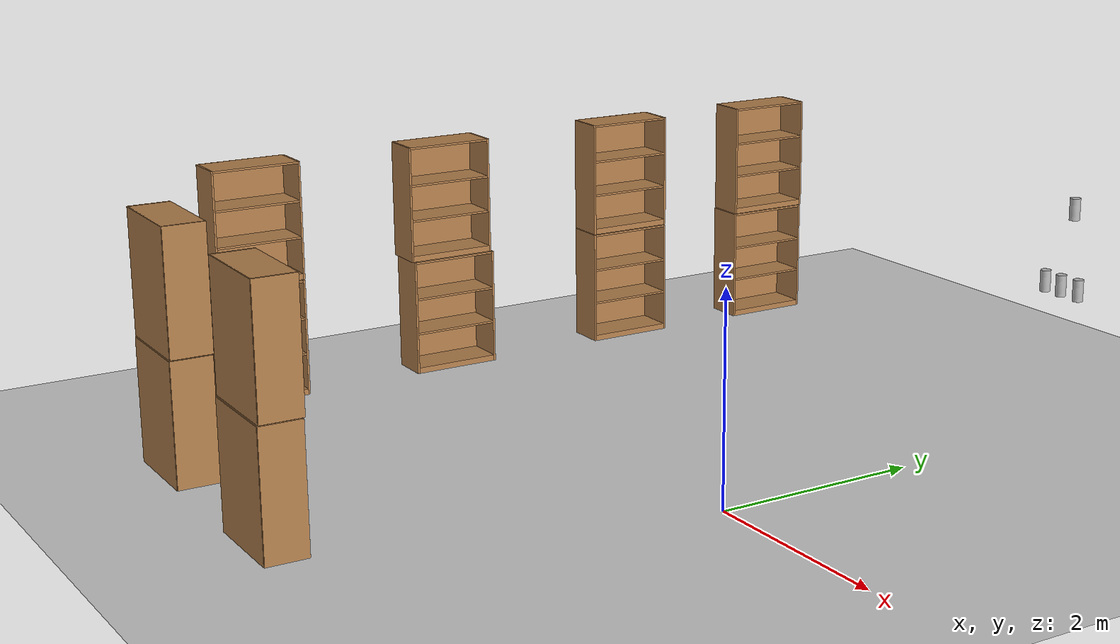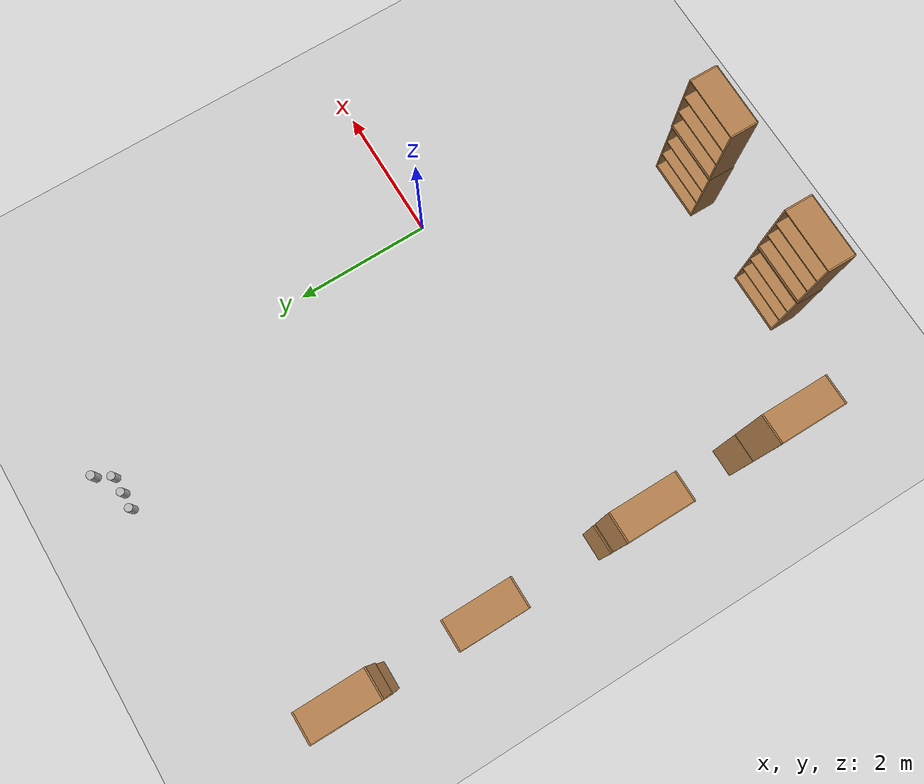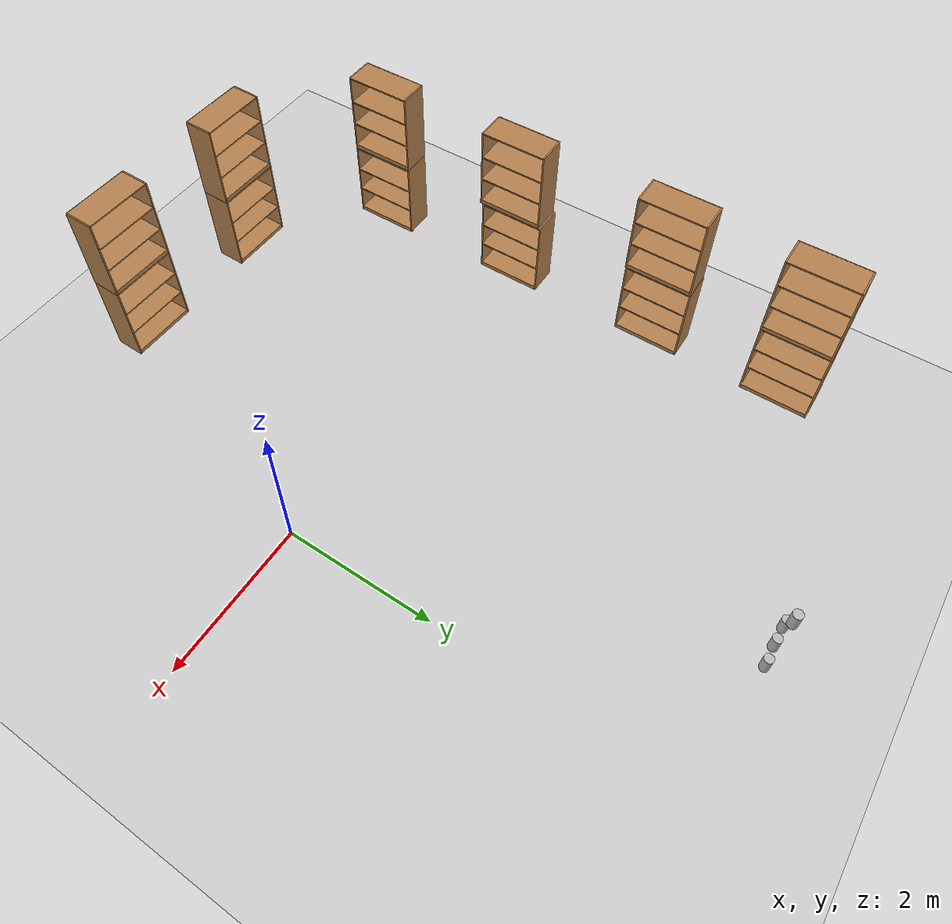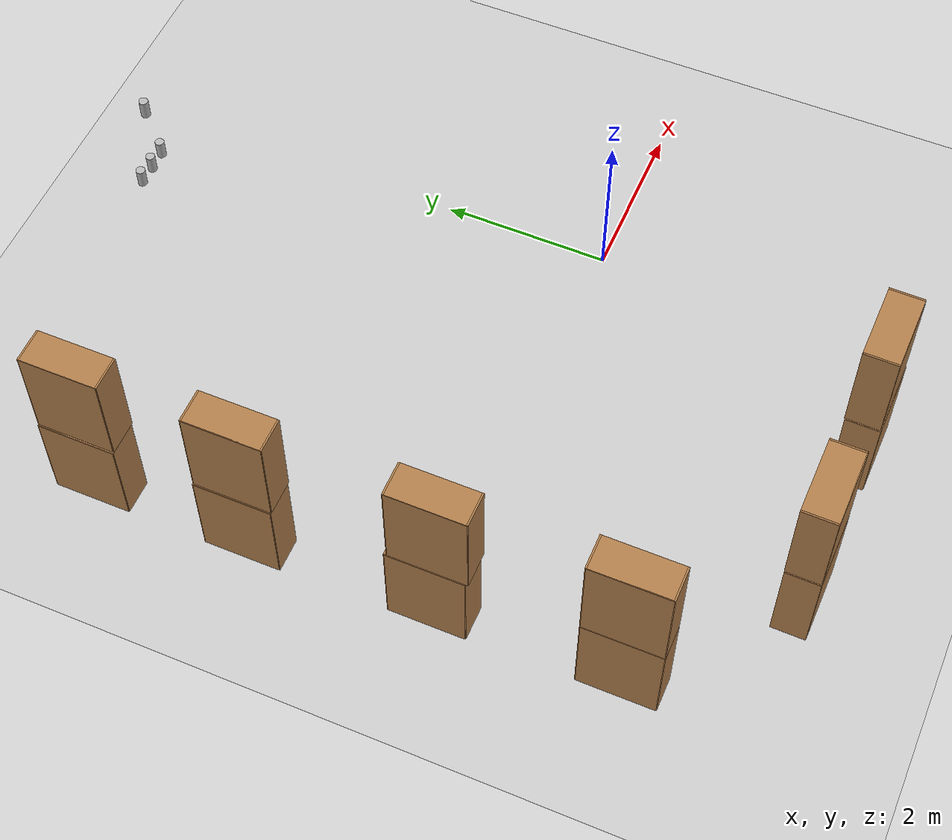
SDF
<sdf version="1.7">
 <world name="default">
  <model name="ground_plane">
   <static>1</static>
   <link name="link">
    <collision name="collision">
     <geometry><plane><normal>0 0 1</normal><size>100 100</size></plane></geometry>
     <surface><friction><ode><mu>100</mu><mu2>50</mu2></ode></friction></surface>
    </collision>
    <visual name="visual">
     <cast_shadows>0</cast_shadows>
     <geometry><plane><normal>0 0 1</normal><size>100 100</size></plane></geometry>
     <material>
      <script><uri>file://media/materials/scripts/gazebo.material</uri><name>Gazebo/Grey</name></script>
     </material>
    </visual>
   </link>
  </model>
  <model name="bookshelf_5_clone_2">
   <static>1</static>
   <link name="link">
    <inertial><mass>1</mass></inertial>
    <collision name="back">
     <pose>0 0.005 0.6 0 -0 0</pose>
     <geometry><box><size>0.9 0.01 1.2</size></box></geometry>
    </collision>
    <visual name="visual1">
     <pose>0 0.005 0.6 0 -0 0</pose>
     <geometry><box><size>0.9 0.01 1.2</size></box></geometry>
     <material>
      <script><uri>file://media/materials/scripts/gazebo.material</uri><name>Gazebo/Wood</name></script>
     </material>
    </visual>
    <collision name="left_side">
     <pose>0.45 -0.195 0.6 0 -0 0</pose>
     <geometry><box><size>0.02 0.4 1.2</size></box></geometry>
    </collision>
    <visual name="visual2">
     <pose>0.45 -0.195 0.6 0 -0 0</pose>
     <geometry><box><size>0.02 0.4 1.2</size></box></geometry>
     <material>
      <script><uri>file://media/materials/scripts/gazebo.material</uri><name>Gazebo/Wood</name></script>
     </material>
    </visual>
    <collision name="right_side">
     <pose>-0.45 -0.195 0.6 0 -0 0</pose>
     <geometry><box><size>0.02 0.4 1.2</size></box></geometry>
    </collision>
    <visual name="visual3">
     <pose>-0.45 -0.195 0.6 0 -0 0</pose>
     <geometry><box><size>0.02 0.4 1.2</size></box></geometry>
     <material>
      <script><uri>file://media/materials/scripts/gazebo.material</uri><name>Gazebo/Wood</name></script>
     </material>
    </visual>
    <collision name="bottom">
     <pose>0 -0.195 0.03 0 -0 0</pose>
     <geometry><box><size>0.88 0.4 0.06</size></box></geometry>
    </collision>
    <visual name="visual4">
     <pose>0 -0.195 0.03 0 -0 0</pose>
     <geometry><box><size>0.88 0.4 0.06</size></box></geometry>
     <material>
      <script><uri>file://media/materials/scripts/gazebo.material</uri><name>Gazebo/Wood</name></script>
     </material>
    </visual>
    <collision name="top">
     <pose>0 -0.195 1.19 0 -0 0</pose>
     <geometry><box><size>0.88 0.4 0.02</size></box></geometry>
    </collision>
    <visual name="visual5">
     <pose>0 -0.195 1.19 0 -0 0</pose>
     <geometry><box><size>0.88 0.4 0.02</size></box></geometry>
     <material>
      <script><uri>file://media/materials/scripts/gazebo.material</uri><name>Gazebo/Wood</name></script>
     </material>
    </visual>
    <collision name="low_shelf">
     <pose>0 -0.195 0.43 0 -0 0</pose>
     <geometry><box><size>0.88 0.4 0.02</size></box></geometry>
    </collision>
    <visual name="visual6">
     <pose>0 -0.195 0.43 0 -0 0</pose>
     <geometry><box><size>0.88 0.4 0.02</size></box></geometry>
     <material>
      <script><uri>file://media/materials/scripts/gazebo.material</uri><name>Gazebo/Wood</name></script>
     </material>
    </visual>
    <collision name="high_shelf">
     <pose>0 -0.195 0.8 0 -0 0</pose>
     <geometry><box><size>0.88 0.4 0.02</size></box></geometry>
    </collision>
    <visual name="visual7">
     <pose>0 -0.195 0.8 0 -0 0</pose>
     <geometry><box><size>0.88 0.4 0.02</size></box></geometry>
     <material>
      <script><uri>file://media/materials/scripts/gazebo.material</uri><name>Gazebo/Wood</name></script>
     </material>
    </visual>
   </link>
   <pose>-1.42311 -3.81825 0 0 -0 3.12955</pose>
  </model>
  <model name="bookshelf_5_clone_5">
   <static>1</static>
   <link name="link">
    <inertial><mass>1</mass></inertial>
    <collision name="back">
     <pose>0 0.005 0.6 0 -0 0</pose>
     <geometry><box><size>0.9 0.01 1.2</size></box></geometry>
    </collision>
    <visual name="visual1">
     <pose>0 0.005 0.6 0 -0 0</pose>
     <geometry><box><size>0.9 0.01 1.2</size></box></geometry>
     <material>
      <script><uri>file://media/materials/scripts/gazebo.material</uri><name>Gazebo/Wood</name></script>
     </material>
    </visual>
    <collision name="left_side">
     <pose>0.45 -0.195 0.6 0 -0 0</pose>
     <geometry><box><size>0.02 0.4 1.2</size></box></geometry>
    </collision>
    <visual name="visual2">
     <pose>0.45 -0.195 0.6 0 -0 0</pose>
     <geometry><box><size>0.02 0.4 1.2</size></box></geometry>
     <material>
      <script><uri>file://media/materials/scripts/gazebo.material</uri><name>Gazebo/Wood</name></script>
     </material>
    </visual>
    <collision name="right_side">
     <pose>-0.45 -0.195 0.6 0 -0 0</pose>
     <geometry><box><size>0.02 0.4 1.2</size></box></geometry>
    </collision>
    <visual name="visual3">
     <pose>-0.45 -0.195 0.6 0 -0 0</pose>
     <geometry><box><size>0.02 0.4 1.2</size></box></geometry>
     <material>
      <script><uri>file://media/materials/scripts/gazebo.material</uri><name>Gazebo/Wood</name></script>
     </material>
    </visual>
    <collision name="bottom">
     <pose>0 -0.195 0.03 0 -0 0</pose>
     <geometry><box><size>0.88 0.4 0.06</size></box></geometry>
    </collision>
    <visual name="visual4">
     <pose>0 -0.195 0.03 0 -0 0</pose>
     <geometry><box><size>0.88 0.4 0.06</size></box></geometry>
     <material>
      <script><uri>file://media/materials/scripts/gazebo.material</uri><name>Gazebo/Wood</name></script>
     </material>
    </visual>
    <collision name="top">
     <pose>0 -0.195 1.19 0 -0 0</pose>
     <geometry><box><size>0.88 0.4 0.02</size></box></geometry>
    </collision>
    <visual name="visual5">
     <pose>0 -0.195 1.19 0 -0 0</pose>
     <geometry><box><size>0.88 0.4 0.02</size></box></geometry>
     <material>
      <script><uri>file://media/materials/scripts/gazebo.material</uri><name>Gazebo/Wood</name></script>
     </material>
    </visual>
    <collision name="low_shelf">
     <pose>0 -0.195 0.43 0 -0 0</pose>
     <geometry><box><size>0.88 0.4 0.02</size></box></geometry>
    </collision>
    <visual name="visual6">
     <pose>0 -0.195 0.43 0 -0 0</pose>
     <geometry><box><size>0.88 0.4 0.02</size></box></geometry>
     <material>
      <script><uri>file://media/materials/scripts/gazebo.material</uri><name>Gazebo/Wood</name></script>
     </material>
    </visual>
    <collision name="high_shelf">
     <pose>0 -0.195 0.8 0 -0 0</pose>
     <geometry><box><size>0.88 0.4 0.02</size></box></geometry>
    </collision>
    <visual name="visual7">
     <pose>0 -0.195 0.8 0 -0 0</pose>
     <geometry><box><size>0.88 0.4 0.02</size></box></geometry>
     <material>
      <script><uri>file://media/materials/scripts/gazebo.material</uri><name>Gazebo/Wood</name></script>
     </material>
    </visual>
   </link>
   <pose>-3.44979 -3.80253 0 0 -0 3.12955</pose>
  </model>
  <model name="bookshelf_5_clone_clone_0">
   <static>1</static>
   <link name="link">
    <inertial><mass>1</mass></inertial>
    <collision name="back">
     <pose>0 0.005 0.6 0 -0 0</pose>
     <geometry><box><size>0.9 0.01 1.2</size></box></geometry>
    </collision>
    <visual name="visual1">
     <pose>0 0.005 0.6 0 -0 0</pose>
     <geometry><box><size>0.9 0.01 1.2</size></box></geometry>
     <material>
      <script><uri>file://media/materials/scripts/gazebo.material</uri><name>Gazebo/Wood</name></script>
     </material>
    </visual>
    <collision name="left_side">
     <pose>0.45 -0.195 0.6 0 -0 0</pose>
     <geometry><box><size>0.02 0.4 1.2</size></box></geometry>
    </collision>
    <visual name="visual2">
     <pose>0.45 -0.195 0.6 0 -0 0</pose>
     <geometry><box><size>0.02 0.4 1.2</size></box></geometry>
     <material>
      <script><uri>file://media/materials/scripts/gazebo.material</uri><name>Gazebo/Wood</name></script>
     </material>
    </visual>
    <collision name="right_side">
     <pose>-0.45 -0.195 0.6 0 -0 0</pose>
     <geometry><box><size>0.02 0.4 1.2</size></box></geometry>
    </collision>
    <visual name="visual3">
     <pose>-0.45 -0.195 0.6 0 -0 0</pose>
     <geometry><box><size>0.02 0.4 1.2</size></box></geometry>
     <material>
      <script><uri>file://media/materials/scripts/gazebo.material</uri><name>Gazebo/Wood</name></script>
     </material>
    </visual>
    <collision name="bottom">
     <pose>0 -0.195 0.03 0 -0 0</pose>
     <geometry><box><size>0.88 0.4 0.06</size></box></geometry>
    </collision>
    <visual name="visual4">
     <pose>0 -0.195 0.03 0 -0 0</pose>
     <geometry><box><size>0.88 0.4 0.06</size></box></geometry>
     <material>
      <script><uri>file://media/materials/scripts/gazebo.material</uri><name>Gazebo/Wood</name></script>
     </material>
    </visual>
    <collision name="top">
     <pose>0 -0.195 1.19 0 -0 0</pose>
     <geometry><box><size>0.88 0.4 0.02</size></box></geometry>
    </collision>
    <visual name="visual5">
     <pose>0 -0.195 1.19 0 -0 0</pose>
     <geometry><box><size>0.88 0.4 0.02</size></box></geometry>
     <material>
      <script><uri>file://media/materials/scripts/gazebo.material</uri><name>Gazebo/Wood</name></script>
     </material>
    </visual>
    <collision name="low_shelf">
     <pose>0 -0.195 0.43 0 -0 0</pose>
     <geometry><box><size>0.88 0.4 0.02</size></box></geometry>
    </collision>
    <visual name="visual6">
     <pose>0 -0.195 0.43 0 -0 0</pose>
     <geometry><box><size>0.88 0.4 0.02</size></box></geometry>
     <material>
      <script><uri>file://media/materials/scripts/gazebo.material</uri><name>Gazebo/Wood</name></script>
     </material>
    </visual>
    <collision name="high_shelf">
     <pose>0 -0.195 0.8 0 -0 0</pose>
     <geometry><box><size>0.88 0.4 0.02</size></box></geometry>
    </collision>
    <visual name="visual7">
     <pose>0 -0.195 0.8 0 -0 0</pose>
     <geometry><box><size>0.88 0.4 0.02</size></box></geometry>
     <material>
      <script><uri>file://media/materials/scripts/gazebo.material</uri><name>Gazebo/Wood</name></script>
     </material>
    </visual>
   </link>
   <pose>-1.41694 -3.81004 1.21139 0 -0 3.12955</pose>
  </model>
  <model name="bookshelf_5_clone_clone_1">
   <static>1</static>
   <link name="link">
    <inertial><mass>1</mass></inertial>
    <collision name="back">
     <pose>0 0.005 0.6 0 -0 0</pose>
     <geometry><box><size>0.9 0.01 1.2</size></box></geometry>
    </collision>
    <visual name="visual1">
     <pose>0 0.005 0.6 0 -0 0</pose>
     <geometry><box><size>0.9 0.01 1.2</size></box></geometry>
     <material>
      <script><uri>file://media/materials/scripts/gazebo.material</uri><name>Gazebo/Wood</name></script>
     </material>
    </visual>
    <collision name="left_side">
     <pose>0.45 -0.195 0.6 0 -0 0</pose>
     <geometry><box><size>0.02 0.4 1.2</size></box></geometry>
    </collision>
    <visual name="visual2">
     <pose>0.45 -0.195 0.6 0 -0 0</pose>
     <geometry><box><size>0.02 0.4 1.2</size></box></geometry>
     <material>
      <script><uri>file://media/materials/scripts/gazebo.material</uri><name>Gazebo/Wood</name></script>
     </material>
    </visual>
    <collision name="right_side">
     <pose>-0.45 -0.195 0.6 0 -0 0</pose>
     <geometry><box><size>0.02 0.4 1.2</size></box></geometry>
    </collision>
    <visual name="visual3">
     <pose>-0.45 -0.195 0.6 0 -0 0</pose>
     <geometry><box><size>0.02 0.4 1.2</size></box></geometry>
     <material>
      <script><uri>file://media/materials/scripts/gazebo.material</uri><name>Gazebo/Wood</name></script>
     </material>
    </visual>
    <collision name="bottom">
     <pose>0 -0.195 0.03 0 -0 0</pose>
     <geometry><box><size>0.88 0.4 0.06</size></box></geometry>
    </collision>
    <visual name="visual4">
     <pose>0 -0.195 0.03 0 -0 0</pose>
     <geometry><box><size>0.88 0.4 0.06</size></box></geometry>
     <material>
      <script><uri>file://media/materials/scripts/gazebo.material</uri><name>Gazebo/Wood</name></script>
     </material>
    </visual>
    <collision name="top">
     <pose>0 -0.195 1.19 0 -0 0</pose>
     <geometry><box><size>0.88 0.4 0.02</size></box></geometry>
    </collision>
    <visual name="visual5">
     <pose>0 -0.195 1.19 0 -0 0</pose>
     <geometry><box><size>0.88 0.4 0.02</size></box></geometry>
     <material>
      <script><uri>file://media/materials/scripts/gazebo.material</uri><name>Gazebo/Wood</name></script>
     </material>
    </visual>
    <collision name="low_shelf">
     <pose>0 -0.195 0.43 0 -0 0</pose>
     <geometry><box><size>0.88 0.4 0.02</size></box></geometry>
    </collision>
    <visual name="visual6">
     <pose>0 -0.195 0.43 0 -0 0</pose>
     <geometry><box><size>0.88 0.4 0.02</size></box></geometry>
     <material>
      <script><uri>file://media/materials/scripts/gazebo.material</uri><name>Gazebo/Wood</name></script>
     </material>
    </visual>
    <collision name="high_shelf">
     <pose>0 -0.195 0.8 0 -0 0</pose>
     <geometry><box><size>0.88 0.4 0.02</size></box></geometry>
    </collision>
    <visual name="visual7">
     <pose>0 -0.195 0.8 0 -0 0</pose>
     <geometry><box><size>0.88 0.4 0.02</size></box></geometry>
     <material>
      <script><uri>file://media/materials/scripts/gazebo.material</uri><name>Gazebo/Wood</name></script>
     </material>
    </visual>
   </link>
   <pose>-3.44383 -3.79926 1.21139 0 -0 3.12955</pose>
  </model>
  <model name="bookshelf_0_clone_0">
   <static>1</static>
   <link name="link">
    <inertial><mass>1</mass></inertial>
    <collision name="back">
     <pose>0 0.005 0.6 0 -0 0</pose>
     <geometry><box><size>0.9 0.01 1.2</size></box></geometry>
    </collision>
    <visual name="visual1">
     <pose>0 0.005 0.6 0 -0 0</pose>
     <geometry><box><size>0.9 0.01 1.2</size></box></geometry>
     <material>
      <script><uri>file://media/materials/scripts/gazebo.material</uri><name>Gazebo/Wood</name></script>
     </material>
    </visual>
    <collision name="left_side">
     <pose>0.45 -0.195 0.6 0 -0 0</pose>
     <geometry><box><size>0.02 0.4 1.2</size></box></geometry>
    </collision>
    <visual name="visual2">
     <pose>0.45 -0.195 0.6 0 -0 0</pose>
     <geometry><box><size>0.02 0.4 1.2</size></box></geometry>
     <material>
      <script><uri>file://media/materials/scripts/gazebo.material</uri><name>Gazebo/Wood</name></script>
     </material>
    </visual>
    <collision name="right_side">
     <pose>-0.45 -0.195 0.6 0 -0 0</pose>
     <geometry><box><size>0.02 0.4 1.2</size></box></geometry>
    </collision>
    <visual name="visual3">
     <pose>-0.45 -0.195 0.6 0 -0 0</pose>
     <geometry><box><size>0.02 0.4 1.2</size></box></geometry>
     <material>
      <script><uri>file://media/materials/scripts/gazebo.material</uri><name>Gazebo/Wood</name></script>
     </material>
    </visual>
    <collision name="bottom">
     <pose>0 -0.195 0.03 0 -0 0</pose>
     <geometry><box><size>0.88 0.4 0.06</size></box></geometry>
    </collision>
    <visual name="visual4">
     <pose>0 -0.195 0.03 0 -0 0</pose>
     <geometry><box><size>0.88 0.4 0.06</size></box></geometry>
     <material>
      <script><uri>file://media/materials/scripts/gazebo.material</uri><name>Gazebo/Wood</name></script>
     </material>
    </visual>
    <collision name="top">
     <pose>0 -0.195 1.19 0 -0 0</pose>
     <geometry><box><size>0.88 0.4 0.02</size></box></geometry>
    </collision>
    <visual name="visual5">
     <pose>0 -0.195 1.19 0 -0 0</pose>
     <geometry><box><size>0.88 0.4 0.02</size></box></geometry>
     <material>
      <script><uri>file://media/materials/scripts/gazebo.material</uri><name>Gazebo/Wood</name></script>
     </material>
    </visual>
    <collision name="low_shelf">
     <pose>0 -0.195 0.43 0 -0 0</pose>
     <geometry><box><size>0.88 0.4 0.02</size></box></geometry>
    </collision>
    <visual name="visual6">
     <pose>0 -0.195 0.43 0 -0 0</pose>
     <geometry><box><size>0.88 0.4 0.02</size></box></geometry>
     <material>
      <script><uri>file://media/materials/scripts/gazebo.material</uri><name>Gazebo/Wood</name></script>
     </material>
    </visual>
    <collision name="high_shelf">
     <pose>0 -0.195 0.8 0 -0 0</pose>
     <geometry><box><size>0.88 0.4 0.02</size></box></geometry>
    </collision>
    <visual name="visual7">
     <pose>0 -0.195 0.8 0 -0 0</pose>
     <geometry><box><size>0.88 0.4 0.02</size></box></geometry>
     <material>
      <script><uri>file://media/materials/scripts/gazebo.material</uri><name>Gazebo/Wood</name></script>
     </material>
    </visual>
   </link>
   <pose>-5.30935 -0.025093 0 0 -0 1.5697</pose>
  </model>
  <model name="bookshelf_0_clone_0_clone">
   <static>1</static>
   <link name="link">
    <inertial><mass>1</mass></inertial>
    <collision name="back">
     <pose>0 0.005 0.6 0 -0 0</pose>
     <geometry><box><size>0.9 0.01 1.2</size></box></geometry>
    </collision>
    <visual name="visual1">
     <pose>0 0.005 0.6 0 -0 0</pose>
     <geometry><box><size>0.9 0.01 1.2</size></box></geometry>
     <material>
      <script><uri>file://media/materials/scripts/gazebo.material</uri><name>Gazebo/Wood</name></script>
     </material>
    </visual>
    <collision name="left_side">
     <pose>0.45 -0.195 0.6 0 -0 0</pose>
     <geometry><box><size>0.02 0.4 1.2</size></box></geometry>
    </collision>
    <visual name="visual2">
     <pose>0.45 -0.195 0.6 0 -0 0</pose>
     <geometry><box><size>0.02 0.4 1.2</size></box></geometry>
     <material>
      <script><uri>file://media/materials/scripts/gazebo.material</uri><name>Gazebo/Wood</name></script>
     </material>
    </visual>
    <collision name="right_side">
     <pose>-0.45 -0.195 0.6 0 -0 0</pose>
     <geometry><box><size>0.02 0.4 1.2</size></box></geometry>
    </collision>
    <visual name="visual3">
     <pose>-0.45 -0.195 0.6 0 -0 0</pose>
     <geometry><box><size>0.02 0.4 1.2</size></box></geometry>
     <material>
      <script><uri>file://media/materials/scripts/gazebo.material</uri><name>Gazebo/Wood</name></script>
     </material>
    </visual>
    <collision name="bottom">
     <pose>0 -0.195 0.03 0 -0 0</pose>
     <geometry><box><size>0.88 0.4 0.06</size></box></geometry>
    </collision>
    <visual name="visual4">
     <pose>0 -0.195 0.03 0 -0 0</pose>
     <geometry><box><size>0.88 0.4 0.06</size></box></geometry>
     <material>
      <script><uri>file://media/materials/scripts/gazebo.material</uri><name>Gazebo/Wood</name></script>
     </material>
    </visual>
    <collision name="top">
     <pose>0 -0.195 1.19 0 -0 0</pose>
     <geometry><box><size>0.88 0.4 0.02</size></box></geometry>
    </collision>
    <visual name="visual5">
     <pose>0 -0.195 1.19 0 -0 0</pose>
     <geometry><box><size>0.88 0.4 0.02</size></box></geometry>
     <material>
      <script><uri>file://media/materials/scripts/gazebo.material</uri><name>Gazebo/Wood</name></script>
     </material>
    </visual>
    <collision name="low_shelf">
     <pose>0 -0.195 0.43 0 -0 0</pose>
     <geometry><box><size>0.88 0.4 0.02</size></box></geometry>
    </collision>
    <visual name="visual6">
     <pose>0 -0.195 0.43 0 -0 0</pose>
     <geometry><box><size>0.88 0.4 0.02</size></box></geometry>
     <material>
      <script><uri>file://media/materials/scripts/gazebo.material</uri><name>Gazebo/Wood</name></script>
     </material>
    </visual>
    <collision name="high_shelf">
     <pose>0 -0.195 0.8 0 -0 0</pose>
     <geometry><box><size>0.88 0.4 0.02</size></box></geometry>
    </collision>
    <visual name="visual7">
     <pose>0 -0.195 0.8 0 -0 0</pose>
     <geometry><box><size>0.88 0.4 0.02</size></box></geometry>
     <material>
      <script><uri>file://media/materials/scripts/gazebo.material</uri><name>Gazebo/Wood</name></script>
     </material>
    </visual>
   </link>
   <pose>-5.33454 2.15943 0 0 -0 1.5697</pose>
  </model>
  <model name="bookshelf_0_clone_0_clone_0">
   <static>1</static>
   <link name="link">
    <inertial><mass>1</mass></inertial>
    <collision name="back">
     <pose>0 0.005 0.6 0 -0 0</pose>
     <geometry><box><size>0.9 0.01 1.2</size></box></geometry>
    </collision>
    <visual name="visual1">
     <pose>0 0.005 0.6 0 -0 0</pose>
     <geometry><box><size>0.9 0.01 1.2</size></box></geometry>
     <material>
      <script><uri>file://media/materials/scripts/gazebo.material</uri><name>Gazebo/Wood</name></script>
     </material>
    </visual>
    <collision name="left_side">
     <pose>0.45 -0.195 0.6 0 -0 0</pose>
     <geometry><box><size>0.02 0.4 1.2</size></box></geometry>
    </collision>
    <visual name="visual2">
     <pose>0.45 -0.195 0.6 0 -0 0</pose>
     <geometry><box><size>0.02 0.4 1.2</size></box></geometry>
     <material>
      <script><uri>file://media/materials/scripts/gazebo.material</uri><name>Gazebo/Wood</name></script>
     </material>
    </visual>
    <collision name="right_side">
     <pose>-0.45 -0.195 0.6 0 -0 0</pose>
     <geometry><box><size>0.02 0.4 1.2</size></box></geometry>
    </collision>
    <visual name="visual3">
     <pose>-0.45 -0.195 0.6 0 -0 0</pose>
     <geometry><box><size>0.02 0.4 1.2</size></box></geometry>
     <material>
      <script><uri>file://media/materials/scripts/gazebo.material</uri><name>Gazebo/Wood</name></script>
     </material>
    </visual>
    <collision name="bottom">
     <pose>0 -0.195 0.03 0 -0 0</pose>
     <geometry><box><size>0.88 0.4 0.06</size></box></geometry>
    </collision>
    <visual name="visual4">
     <pose>0 -0.195 0.03 0 -0 0</pose>
     <geometry><box><size>0.88 0.4 0.06</size></box></geometry>
     <material>
      <script><uri>file://media/materials/scripts/gazebo.material</uri><name>Gazebo/Wood</name></script>
     </material>
    </visual>
    <collision name="top">
     <pose>0 -0.195 1.19 0 -0 0</pose>
     <geometry><box><size>0.88 0.4 0.02</size></box></geometry>
    </collision>
    <visual name="visual5">
     <pose>0 -0.195 1.19 0 -0 0</pose>
     <geometry><box><size>0.88 0.4 0.02</size></box></geometry>
     <material>
      <script><uri>file://media/materials/scripts/gazebo.material</uri><name>Gazebo/Wood</name></script>
     </material>
    </visual>
    <collision name="low_shelf">
     <pose>0 -0.195 0.43 0 -0 0</pose>
     <geometry><box><size>0.88 0.4 0.02</size></box></geometry>
    </collision>
    <visual name="visual6">
     <pose>0 -0.195 0.43 0 -0 0</pose>
     <geometry><box><size>0.88 0.4 0.02</size></box></geometry>
     <material>
      <script><uri>file://media/materials/scripts/gazebo.material</uri><name>Gazebo/Wood</name></script>
     </material>
    </visual>
    <collision name="high_shelf">
     <pose>0 -0.195 0.8 0 -0 0</pose>
     <geometry><box><size>0.88 0.4 0.02</size></box></geometry>
    </collision>
    <visual name="visual7">
     <pose>0 -0.195 0.8 0 -0 0</pose>
     <geometry><box><size>0.88 0.4 0.02</size></box></geometry>
     <material>
      <script><uri>file://media/materials/scripts/gazebo.material</uri><name>Gazebo/Wood</name></script>
     </material>
    </visual>
   </link>
   <pose>-5.32765 4.01778 0 0 -0 1.5697</pose>
  </model>
  <model name="bookshelf_0_clone_0_clone_1_clone_0">
   <static>1</static>
   <link name="link">
    <inertial><mass>1</mass></inertial>
    <collision name="back">
     <pose>0 0.005 0.6 0 -0 0</pose>
     <geometry><box><size>0.9 0.01 1.2</size></box></geometry>
    </collision>
    <visual name="visual1">
     <pose>0 0.005 0.6 0 -0 0</pose>
     <geometry><box><size>0.9 0.01 1.2</size></box></geometry>
     <material>
      <script><uri>file://media/materials/scripts/gazebo.material</uri><name>Gazebo/Wood</name></script>
     </material>
    </visual>
    <collision name="left_side">
     <pose>0.45 -0.195 0.6 0 -0 0</pose>
     <geometry><box><size>0.02 0.4 1.2</size></box></geometry>
    </collision>
    <visual name="visual2">
     <pose>0.45 -0.195 0.6 0 -0 0</pose>
     <geometry><box><size>0.02 0.4 1.2</size></box></geometry>
     <material>
      <script><uri>file://media/materials/scripts/gazebo.material</uri><name>Gazebo/Wood</name></script>
     </material>
    </visual>
    <collision name="right_side">
     <pose>-0.45 -0.195 0.6 0 -0 0</pose>
     <geometry><box><size>0.02 0.4 1.2</size></box></geometry>
    </collision>
    <visual name="visual3">
     <pose>-0.45 -0.195 0.6 0 -0 0</pose>
     <geometry><box><size>0.02 0.4 1.2</size></box></geometry>
     <material>
      <script><uri>file://media/materials/scripts/gazebo.material</uri><name>Gazebo/Wood</name></script>
     </material>
    </visual>
    <collision name="bottom">
     <pose>0 -0.195 0.03 0 -0 0</pose>
     <geometry><box><size>0.88 0.4 0.06</size></box></geometry>
    </collision>
    <visual name="visual4">
     <pose>0 -0.195 0.03 0 -0 0</pose>
     <geometry><box><size>0.88 0.4 0.06</size></box></geometry>
     <material>
      <script><uri>file://media/materials/scripts/gazebo.material</uri><name>Gazebo/Wood</name></script>
     </material>
    </visual>
    <collision name="top">
     <pose>0 -0.195 1.19 0 -0 0</pose>
     <geometry><box><size>0.88 0.4 0.02</size></box></geometry>
    </collision>
    <visual name="visual5">
     <pose>0 -0.195 1.19 0 -0 0</pose>
     <geometry><box><size>0.88 0.4 0.02</size></box></geometry>
     <material>
      <script><uri>file://media/materials/scripts/gazebo.material</uri><name>Gazebo/Wood</name></script>
     </material>
    </visual>
    <collision name="low_shelf">
     <pose>0 -0.195 0.43 0 -0 0</pose>
     <geometry><box><size>0.88 0.4 0.02</size></box></geometry>
    </collision>
    <visual name="visual6">
     <pose>0 -0.195 0.43 0 -0 0</pose>
     <geometry><box><size>0.88 0.4 0.02</size></box></geometry>
     <material>
      <script><uri>file://media/materials/scripts/gazebo.material</uri><name>Gazebo/Wood</name></script>
     </material>
    </visual>
    <collision name="high_shelf">
     <pose>0 -0.195 0.8 0 -0 0</pose>
     <geometry><box><size>0.88 0.4 0.02</size></box></geometry>
    </collision>
    <visual name="visual7">
     <pose>0 -0.195 0.8 0 -0 0</pose>
     <geometry><box><size>0.88 0.4 0.02</size></box></geometry>
     <material>
      <script><uri>file://media/materials/scripts/gazebo.material</uri><name>Gazebo/Wood</name></script>
     </material>
    </visual>
   </link>
   <pose>-5.32334 2.15341 1.21067 0 -0 1.5697</pose>
  </model>
  <model name="bookshelf_0_clone_0_clone_1_clone_1">
   <static>1</static>
   <link name="link">
    <inertial><mass>1</mass></inertial>
    <collision name="back">
     <pose>0 0.005 0.6 0 -0 0</pose>
     <geometry><box><size>0.9 0.01 1.2</size></box></geometry>
    </collision>
    <visual name="visual1">
     <pose>0 0.005 0.6 0 -0 0</pose>
     <geometry><box><size>0.9 0.01 1.2</size></box></geometry>
     <material>
      <script><uri>file://media/materials/scripts/gazebo.material</uri><name>Gazebo/Wood</name></script>
     </material>
    </visual>
    <collision name="left_side">
     <pose>0.45 -0.195 0.6 0 -0 0</pose>
     <geometry><box><size>0.02 0.4 1.2</size></box></geometry>
    </collision>
    <visual name="visual2">
     <pose>0.45 -0.195 0.6 0 -0 0</pose>
     <geometry><box><size>0.02 0.4 1.2</size></box></geometry>
     <material>
      <script><uri>file://media/materials/scripts/gazebo.material</uri><name>Gazebo/Wood</name></script>
     </material>
    </visual>
    <collision name="right_side">
     <pose>-0.45 -0.195 0.6 0 -0 0</pose>
     <geometry><box><size>0.02 0.4 1.2</size></box></geometry>
    </collision>
    <visual name="visual3">
     <pose>-0.45 -0.195 0.6 0 -0 0</pose>
     <geometry><box><size>0.02 0.4 1.2</size></box></geometry>
     <material>
      <script><uri>file://media/materials/scripts/gazebo.material</uri><name>Gazebo/Wood</name></script>
     </material>
    </visual>
    <collision name="bottom">
     <pose>0 -0.195 0.03 0 -0 0</pose>
     <geometry><box><size>0.88 0.4 0.06</size></box></geometry>
    </collision>
    <visual name="visual4">
     <pose>0 -0.195 0.03 0 -0 0</pose>
     <geometry><box><size>0.88 0.4 0.06</size></box></geometry>
     <material>
      <script><uri>file://media/materials/scripts/gazebo.material</uri><name>Gazebo/Wood</name></script>
     </material>
    </visual>
    <collision name="top">
     <pose>0 -0.195 1.19 0 -0 0</pose>
     <geometry><box><size>0.88 0.4 0.02</size></box></geometry>
    </collision>
    <visual name="visual5">
     <pose>0 -0.195 1.19 0 -0 0</pose>
     <geometry><box><size>0.88 0.4 0.02</size></box></geometry>
     <material>
      <script><uri>file://media/materials/scripts/gazebo.material</uri><name>Gazebo/Wood</name></script>
     </material>
    </visual>
    <collision name="low_shelf">
     <pose>0 -0.195 0.43 0 -0 0</pose>
     <geometry><box><size>0.88 0.4 0.02</size></box></geometry>
    </collision>
    <visual name="visual6">
     <pose>0 -0.195 0.43 0 -0 0</pose>
     <geometry><box><size>0.88 0.4 0.02</size></box></geometry>
     <material>
      <script><uri>file://media/materials/scripts/gazebo.material</uri><name>Gazebo/Wood</name></script>
     </material>
    </visual>
    <collision name="high_shelf">
     <pose>0 -0.195 0.8 0 -0 0</pose>
     <geometry><box><size>0.88 0.4 0.02</size></box></geometry>
    </collision>
    <visual name="visual7">
     <pose>0 -0.195 0.8 0 -0 0</pose>
     <geometry><box><size>0.88 0.4 0.02</size></box></geometry>
     <material>
      <script><uri>file://media/materials/scripts/gazebo.material</uri><name>Gazebo/Wood</name></script>
     </material>
    </visual>
   </link>
   <pose>-5.31196 4.0164 1.21067 0 -0 1.5697</pose>
  </model>
  <model name="bookshelf_0_clone_0_clone_1">
   <static>1</static>
   <link name="link">
    <inertial><mass>1</mass></inertial>
    <collision name="back">
     <pose>0 0.005 0.6 0 -0 0</pose>
     <geometry><box><size>0.9 0.01 1.2</size></box></geometry>
    </collision>
    <visual name="visual1">
     <pose>0 0.005 0.6 0 -0 0</pose>
     <geometry><box><size>0.9 0.01 1.2</size></box></geometry>
     <material>
      <script><uri>file://media/materials/scripts/gazebo.material</uri><name>Gazebo/Wood</name></script>
     </material>
    </visual>
    <collision name="left_side">
     <pose>0.45 -0.195 0.6 0 -0 0</pose>
     <geometry><box><size>0.02 0.4 1.2</size></box></geometry>
    </collision>
    <visual name="visual2">
     <pose>0.45 -0.195 0.6 0 -0 0</pose>
     <geometry><box><size>0.02 0.4 1.2</size></box></geometry>
     <material>
      <script><uri>file://media/materials/scripts/gazebo.material</uri><name>Gazebo/Wood</name></script>
     </material>
    </visual>
    <collision name="right_side">
     <pose>-0.45 -0.195 0.6 0 -0 0</pose>
     <geometry><box><size>0.02 0.4 1.2</size></box></geometry>
    </collision>
    <visual name="visual3">
     <pose>-0.45 -0.195 0.6 0 -0 0</pose>
     <geometry><box><size>0.02 0.4 1.2</size></box></geometry>
     <material>
      <script><uri>file://media/materials/scripts/gazebo.material</uri><name>Gazebo/Wood</name></script>
     </material>
    </visual>
    <collision name="bottom">
     <pose>0 -0.195 0.03 0 -0 0</pose>
     <geometry><box><size>0.88 0.4 0.06</size></box></geometry>
    </collision>
    <visual name="visual4">
     <pose>0 -0.195 0.03 0 -0 0</pose>
     <geometry><box><size>0.88 0.4 0.06</size></box></geometry>
     <material>
      <script><uri>file://media/materials/scripts/gazebo.material</uri><name>Gazebo/Wood</name></script>
     </material>
    </visual>
    <collision name="top">
     <pose>0 -0.195 1.19 0 -0 0</pose>
     <geometry><box><size>0.88 0.4 0.02</size></box></geometry>
    </collision>
    <visual name="visual5">
     <pose>0 -0.195 1.19 0 -0 0</pose>
     <geometry><box><size>0.88 0.4 0.02</size></box></geometry>
     <material>
      <script><uri>file://media/materials/scripts/gazebo.material</uri><name>Gazebo/Wood</name></script>
     </material>
    </visual>
    <collision name="low_shelf">
     <pose>0 -0.195 0.43 0 -0 0</pose>
     <geometry><box><size>0.88 0.4 0.02</size></box></geometry>
    </collision>
    <visual name="visual6">
     <pose>0 -0.195 0.43 0 -0 0</pose>
     <geometry><box><size>0.88 0.4 0.02</size></box></geometry>
     <material>
      <script><uri>file://media/materials/scripts/gazebo.material</uri><name>Gazebo/Wood</name></script>
     </material>
    </visual>
    <collision name="high_shelf">
     <pose>0 -0.195 0.8 0 -0 0</pose>
     <geometry><box><size>0.88 0.4 0.02</size></box></geometry>
    </collision>
    <visual name="visual7">
     <pose>0 -0.195 0.8 0 -0 0</pose>
     <geometry><box><size>0.88 0.4 0.02</size></box></geometry>
     <material>
      <script><uri>file://media/materials/scripts/gazebo.material</uri><name>Gazebo/Wood</name></script>
     </material>
    </visual>
   </link>
   <pose>-5.28921 -2.17241 0 0 -0 1.5697</pose>
  </model>
  <model name="bookshelf_0_clone_0_clone_1_clone_0_clone">
   <static>1</static>
   <link name="link">
    <inertial><mass>1</mass></inertial>
    <collision name="back">
     <pose>0 0.005 0.6 0 -0 0</pose>
     <geometry><box><size>0.9 0.01 1.2</size></box></geometry>
    </collision>
    <visual name="visual1">
     <pose>0 0.005 0.6 0 -0 0</pose>
     <geometry><box><size>0.9 0.01 1.2</size></box></geometry>
     <material>
      <script><uri>file://media/materials/scripts/gazebo.material</uri><name>Gazebo/Wood</name></script>
     </material>
    </visual>
    <collision name="left_side">
     <pose>0.45 -0.195 0.6 0 -0 0</pose>
     <geometry><box><size>0.02 0.4 1.2</size></box></geometry>
    </collision>
    <visual name="visual2">
     <pose>0.45 -0.195 0.6 0 -0 0</pose>
     <geometry><box><size>0.02 0.4 1.2</size></box></geometry>
     <material>
      <script><uri>file://media/materials/scripts/gazebo.material</uri><name>Gazebo/Wood</name></script>
     </material>
    </visual>
    <collision name="right_side">
     <pose>-0.45 -0.195 0.6 0 -0 0</pose>
     <geometry><box><size>0.02 0.4 1.2</size></box></geometry>
    </collision>
    <visual name="visual3">
     <pose>-0.45 -0.195 0.6 0 -0 0</pose>
     <geometry><box><size>0.02 0.4 1.2</size></box></geometry>
     <material>
      <script><uri>file://media/materials/scripts/gazebo.material</uri><name>Gazebo/Wood</name></script>
     </material>
    </visual>
    <collision name="bottom">
     <pose>0 -0.195 0.03 0 -0 0</pose>
     <geometry><box><size>0.88 0.4 0.06</size></box></geometry>
    </collision>
    <visual name="visual4">
     <pose>0 -0.195 0.03 0 -0 0</pose>
     <geometry><box><size>0.88 0.4 0.06</size></box></geometry>
     <material>
      <script><uri>file://media/materials/scripts/gazebo.material</uri><name>Gazebo/Wood</name></script>
     </material>
    </visual>
    <collision name="top">
     <pose>0 -0.195 1.19 0 -0 0</pose>
     <geometry><box><size>0.88 0.4 0.02</size></box></geometry>
    </collision>
    <visual name="visual5">
     <pose>0 -0.195 1.19 0 -0 0</pose>
     <geometry><box><size>0.88 0.4 0.02</size></box></geometry>
     <material>
      <script><uri>file://media/materials/scripts/gazebo.material</uri><name>Gazebo/Wood</name></script>
     </material>
    </visual>
    <collision name="low_shelf">
     <pose>0 -0.195 0.43 0 -0 0</pose>
     <geometry><box><size>0.88 0.4 0.02</size></box></geometry>
    </collision>
    <visual name="visual6">
     <pose>0 -0.195 0.43 0 -0 0</pose>
     <geometry><box><size>0.88 0.4 0.02</size></box></geometry>
     <material>
      <script><uri>file://media/materials/scripts/gazebo.material</uri><name>Gazebo/Wood</name></script>
     </material>
    </visual>
    <collision name="high_shelf">
     <pose>0 -0.195 0.8 0 -0 0</pose>
     <geometry><box><size>0.88 0.4 0.02</size></box></geometry>
    </collision>
    <visual name="visual7">
     <pose>0 -0.195 0.8 0 -0 0</pose>
     <geometry><box><size>0.88 0.4 0.02</size></box></geometry>
     <material>
      <script><uri>file://media/materials/scripts/gazebo.material</uri><name>Gazebo/Wood</name></script>
     </material>
    </visual>
   </link>
   <pose>-5.30537 -0.057137 1.21067 0 -0 1.5697</pose>
  </model>
  <model name="bookshelf_0_clone_0_clone_1_clone_0_clone_0">
   <static>1</static>
   <link name="link">
    <inertial><mass>1</mass></inertial>
    <collision name="back">
     <pose>0 0.005 0.6 0 -0 0</pose>
     <geometry><box><size>0.9 0.01 1.2</size></box></geometry>
    </collision>
    <visual name="visual1">
     <pose>0 0.005 0.6 0 -0 0</pose>
     <geometry><box><size>0.9 0.01 1.2</size></box></geometry>
     <material>
      <script><uri>file://media/materials/scripts/gazebo.material</uri><name>Gazebo/Wood</name></script>
     </material>
    </visual>
    <collision name="left_side">
     <pose>0.45 -0.195 0.6 0 -0 0</pose>
     <geometry><box><size>0.02 0.4 1.2</size></box></geometry>
    </collision>
    <visual name="visual2">
     <pose>0.45 -0.195 0.6 0 -0 0</pose>
     <geometry><box><size>0.02 0.4 1.2</size></box></geometry>
     <material>
      <script><uri>file://media/materials/scripts/gazebo.material</uri><name>Gazebo/Wood</name></script>
     </material>
    </visual>
    <collision name="right_side">
     <pose>-0.45 -0.195 0.6 0 -0 0</pose>
     <geometry><box><size>0.02 0.4 1.2</size></box></geometry>
    </collision>
    <visual name="visual3">
     <pose>-0.45 -0.195 0.6 0 -0 0</pose>
     <geometry><box><size>0.02 0.4 1.2</size></box></geometry>
     <material>
      <script><uri>file://media/materials/scripts/gazebo.material</uri><name>Gazebo/Wood</name></script>
     </material>
    </visual>
    <collision name="bottom">
     <pose>0 -0.195 0.03 0 -0 0</pose>
     <geometry><box><size>0.88 0.4 0.06</size></box></geometry>
    </collision>
    <visual name="visual4">
     <pose>0 -0.195 0.03 0 -0 0</pose>
     <geometry><box><size>0.88 0.4 0.06</size></box></geometry>
     <material>
      <script><uri>file://media/materials/scripts/gazebo.material</uri><name>Gazebo/Wood</name></script>
     </material>
    </visual>
    <collision name="top">
     <pose>0 -0.195 1.19 0 -0 0</pose>
     <geometry><box><size>0.88 0.4 0.02</size></box></geometry>
    </collision>
    <visual name="visual5">
     <pose>0 -0.195 1.19 0 -0 0</pose>
     <geometry><box><size>0.88 0.4 0.02</size></box></geometry>
     <material>
      <script><uri>file://media/materials/scripts/gazebo.material</uri><name>Gazebo/Wood</name></script>
     </material>
    </visual>
    <collision name="low_shelf">
     <pose>0 -0.195 0.43 0 -0 0</pose>
     <geometry><box><size>0.88 0.4 0.02</size></box></geometry>
    </collision>
    <visual name="visual6">
     <pose>0 -0.195 0.43 0 -0 0</pose>
     <geometry><box><size>0.88 0.4 0.02</size></box></geometry>
     <material>
      <script><uri>file://media/materials/scripts/gazebo.material</uri><name>Gazebo/Wood</name></script>
     </material>
    </visual>
    <collision name="high_shelf">
     <pose>0 -0.195 0.8 0 -0 0</pose>
     <geometry><box><size>0.88 0.4 0.02</size></box></geometry>
    </collision>
    <visual name="visual7">
     <pose>0 -0.195 0.8 0 -0 0</pose>
     <geometry><box><size>0.88 0.4 0.02</size></box></geometry>
     <material>
      <script><uri>file://media/materials/scripts/gazebo.material</uri><name>Gazebo/Wood</name></script>
     </material>
    </visual>
   </link>
   <pose>-5.28921 -2.17241 1.21067 0 -0 1.5697</pose>
  </model>
  <model name="beer_3_clone_clone_clone_clone_clone_0">
   <link name="link">
    <pose>0 0 0.115 0 -0 0</pose>
    <inertial>
     <mass>0.39</mass>
     <inertia><ixx>0.00058</ixx><ixy>0</ixy><ixz>0</ixz><iyy>0.00058</iyy><iyz>0</iyz><izz>0.00019</izz></inertia>
    </inertial>
    <collision name="collision">
     <geometry><cylinder><radius>0.055</radius><length>0.23</length></cylinder></geometry>
    </collision>
    <visual name="visual">
     <geometry><cylinder><radius>0.055</radius><length>0.23</length></cylinder></geometry>
     <material>
      <script>
       <uri>model://beer/materials/scripts</uri>
       <uri>model://beer/materials/textures</uri>
       <name>Beer/Diffuse</name>
      </script>
     </material>
    </visual>
   </link>
   <pose>-1.66058 5.25823 0.809989 -8e-06 -2e-05 0.022643</pose>
  </model>
  <model name="beer_3_clone_clone_clone_clone_clone">
   <link name="link">
    <pose>0 0 0.115 0 -0 0</pose>
    <inertial>
     <mass>0.39</mass>
     <inertia><ixx>0.00058</ixx><ixy>0</ixy><ixz>0</ixz><iyy>0.00058</iyy><iyz>0</iyz><izz>0.00019</izz></inertia>
    </inertial>
    <collision name="collision">
     <geometry><cylinder><radius>0.055</radius><length>0.23</length></cylinder></geometry>
    </collision>
    <visual name="visual">
     <geometry><cylinder><radius>0.055</radius><length>0.23</length></cylinder></geometry>
     <material>
      <script>
       <uri>model://beer/materials/scripts</uri>
       <uri>model://beer/materials/textures</uri>
       <name>Beer/Diffuse</name>
      </script>
     </material>
    </visual>
   </link>
   <pose>-1.42511 5.25448 0.810003 2.7e-05 5.2e-05 0.022177</pose>
  </model>
  <model name="beer_3_clone_clone_clone_clone_clone_1">
   <link name="link">
    <pose>0 0 0.115 0 -0 0</pose>
    <inertial>
     <mass>0.39</mass>
     <inertia><ixx>0.00058</ixx><ixy>0</ixy><ixz>0</ixz><iyy>0.00058</iyy><iyz>0</iyz><izz>0.00019</izz></inertia>
    </inertial>
    <collision name="collision">
     <geometry><cylinder><radius>0.055</radius><length>0.23</length></cylinder></geometry>
    </collision>
    <visual name="visual">
     <geometry><cylinder><radius>0.055</radius><length>0.23</length></cylinder></geometry>
     <material>
      <script>
       <uri>model://beer/materials/scripts</uri>
       <uri>model://beer/materials/textures</uri>
       <name>Beer/Diffuse</name>
      </script>
     </material>
    </visual>
   </link>
   <pose>-1.18343 5.26151 0.81 1e-05 1e-06 0.02258</pose>
  </model>
  <model name="beer_3_clone_clone_clone_clone_1_clone_4_clone">
   <link name="link">
    <pose>0 0 0.115 0 -0 0</pose>
    <inertial>
     <mass>0.39</mass>
     <inertia><ixx>0.00058</ixx><ixy>0</ixy><ixz>0</ixz><iyy>0.00058</iyy><iyz>0</iyz><izz>0.00019</izz></inertia>
    </inertial>
    <collision name="collision">
     <geometry><cylinder><radius>0.055</radius><length>0.23</length></cylinder></geometry>
    </collision>
    <visual name="visual">
     <geometry><cylinder><radius>0.055</radius><length>0.23</length></cylinder></geometry>
     <material>
      <script>
       <uri>model://beer/materials/scripts</uri>
       <uri>model://beer/materials/textures</uri>
       <name>Beer/Diffuse</name>
      </script>
     </material>
    </visual>
   </link>
   <pose>-1.31049 5.27777 1.64481 2e-06 -2.8e-05 0.023754</pose>
  </model>
 </world>
</sdf>
